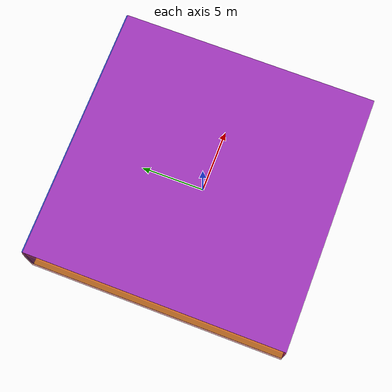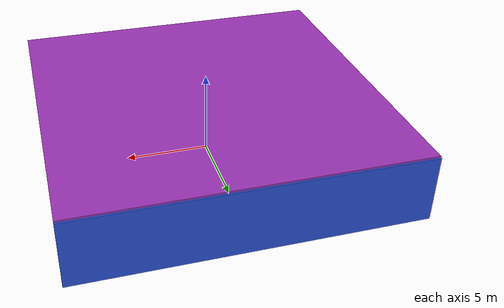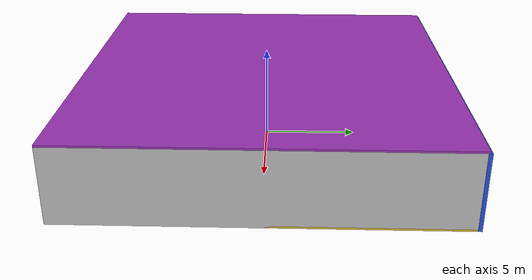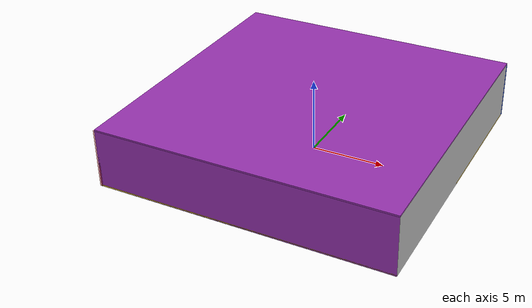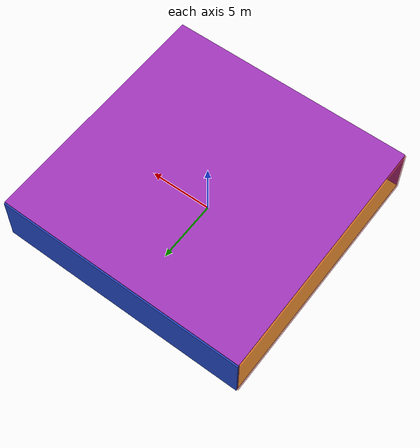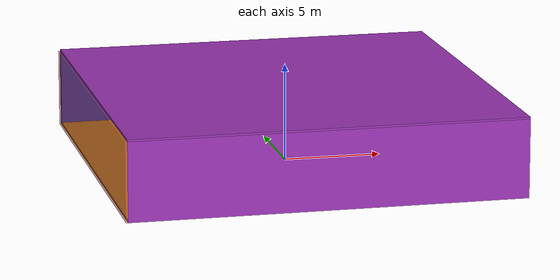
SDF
<sdf version="1.4">
 <world name="default">
  <physics type="ode">
   <max_step_size>0.001</max_step_size>
   <real_time_factor>1</real_time_factor>
   <real_time_update_rate>1000</real_time_update_rate>
   <gravity>0 0 -9.8</gravity>
  </physics>
  <scene><ambient>0.4 0.4 0.4 1</ambient><background>0.7 0.7 0.7 1</background><shadows>1</shadows></scene>
  <model name="Surrounding">
   <static>1</static>
   <link name="Ceiling">
    <collision name="Ceiling_Collision"><geometry><box><size>20 20 0.1</size></box></geometry></collision>
    <visual name="Ceiling_Visual">
     <geometry><box><size>20 20 0.1</size></box></geometry>
     <material>
      <script><uri>file://media/materials/scripts/gazebo.material</uri><name>Gazebo/PurpleGlow</name></script>
     </material>
    </visual>
    <pose>0 0 4.05 0 0 0</pose>
   </link>
   <link name="Wall_South">
    <collision name="Wall_South_Collision">
     <geometry><box><size>20 0 4</size></box></geometry>
     <pose>0 0 2 0 -0 0</pose>
    </collision>
    <visual name="Wall_South_Visual">
     <pose>0 0 2 0 -0 0</pose>
     <geometry><box><size>20 0 4</size></box></geometry>
     <material>
      <script><uri>file://media/materials/scripts/gazebo.material</uri><name>Gazebo/Purple</name></script>
     </material>
    </visual>
    <velocity_decay><linear>0</linear><angular>0</angular></velocity_decay>
    <pose>0 -10 0 0 -0 0</pose>
   </link>
   <link name="Wall_East">
    <collision name="Wall_21_Collision">
     <geometry><box><size>20 0 4</size></box></geometry>
     <pose>0 0 2 0 -0 0</pose>
    </collision>
    <visual name="Wall_21_Visual">
     <pose>0 0 2 0 -0 0</pose>
     <geometry><box><size>20 0 4</size></box></geometry>
     <material>
      <script><uri>file://media/materials/scripts/gazebo.material</uri><name>Gazebo/LightOn</name></script>
     </material>
    </visual>
    <velocity_decay><linear>0</linear><angular>0</angular></velocity_decay>
    <pose>10 0 0 0 -0 1.5708</pose>
   </link>
   <link name="Wall_North">
    <collision name="Wall_22_Collision">
     <geometry><box><size>20 0.2 4</size></box></geometry>
     <pose>0 0 2 0 -0 0</pose>
    </collision>
    <visual name="Wall_22_Visual">
     <pose>0 0 2 0 -0 0</pose>
     <geometry><box><size>20 0.2 4</size></box></geometry>
     <material>
      <script><uri>file://media/materials/scripts/gazebo.material</uri><name>Gazebo/BlueGlow</name></script>
     </material>
    </visual>
    <velocity_decay><linear>0</linear><angular>0</angular></velocity_decay>
    <pose>0 10 0 0 -0 0</pose>
   </link>
   <link name="Wall_West">
    <collision name="Wall_23_Collision">
     <geometry><box><size>20 0.2 4</size></box></geometry>
     <pose>0 0 2 0 -0 0</pose>
    </collision>
    <visual name="Wall_23_Visual">
     <pose>0 0 2 0 -0 0</pose>
     <geometry><box><size>20 0.2 4</size></box></geometry>
     <material>
      <script><uri>file://media/materials/scripts/gazebo.material</uri><name>Gazebo/RedTransparent</name></script>
     </material>
    </visual>
    <velocity_decay><linear>0</linear><angular>0</angular></velocity_decay>
    <pose>-10 0 0 0 0 -1.5708</pose>
   </link>
   <link name="Ground_link">
    <collision name="collision">
     <pose>0 0 .05 0 -0 0</pose>
     <geometry><box><size>20 20 0.1</size></box></geometry>
    </collision>
    <visual name="visual">
     <pose>0 0 .05 0 -0 0</pose>
     <geometry><box><size>20 20 0.1</size></box></geometry>
     <material>
      <script><uri>file://media/materials/scripts/gazebo.material</uri><name>Gazebo/Gold</name></script>
     </material>
    </visual>
   </link>
   <static>1</static>
  </model>
  <spherical_coordinates>
   <surface_model>EARTH_WGS84</surface_model>
   <latitude_deg>0</latitude_deg>
   <longitude_deg>0</longitude_deg>
   <elevation>0</elevation>
   <heading_deg>0</heading_deg>
  </spherical_coordinates>
  <light name="lightball_0" type="diffuse">
   <diffuse>0.8 0.8 0.8 1</diffuse>
   <specular>0.2 0.2 0.2 1</specular>
   <attenuation>
    <range>100</range>
    <constant>0.7</constant>
    <linear>0.01</linear>
    <quadratic>0.001</quadratic>
   </attenuation>
   <direction>-0.5 0.1 -0.9</direction>
   <pose>-3.1986257742 -5.91259475102 1.15199663881 0 0 0</pose>
  </light>
  <light name="lightball_1" type="diffuse">
   <diffuse>0.8 0.8 0.8 1</diffuse>
   <specular>0.2 0.2 0.2 1</specular>
   <attenuation>
    <range>100</range>
    <constant>0.7</constant>
    <linear>0.01</linear>
    <quadratic>0.001</quadratic>
   </attenuation>
   <direction>-0.5 0.1 -0.9</direction>
   <pose>-3.65933525412 4.37682893435 2.88098509873 0 0 0</pose>
  </light>
  <light name="lightball_2" type="diffuse">
   <diffuse>0.8 0.8 0.8 1</diffuse>
   <specular>0.2 0.2 0.2 1</specular>
   <attenuation>
    <range>100</range>
    <constant>0.7</constant>
    <linear>0.01</linear>
    <quadratic>0.001</quadratic>
   </attenuation>
   <direction>-0.5 0.1 -0.9</direction>
   <pose>0.902502931691 -5.28485315188 1.86034813839 0 0 0</pose>
  </light>
  <light name="lightball_3" type="diffuse">
   <diffuse>0.8 0.8 0.8 1</diffuse>
   <specular>0.2 0.2 0.2 1</specular>
   <attenuation>
    <range>100</range>
    <constant>0.7</constant>
    <linear>0.01</linear>
    <quadratic>0.001</quadratic>
   </attenuation>
   <direction>-0.5 0.1 -0.9</direction>
   <pose>1.44536422676 -0.822510468887 0.852054994645 0 0 0</pose>
  </light>
  <light name="lightball_4" type="diffuse">
   <diffuse>0.8 0.8 0.8 1</diffuse>
   <specular>0.2 0.2 0.2 1</specular>
   <attenuation>
    <range>100</range>
    <constant>0.7</constant>
    <linear>0.01</linear>
    <quadratic>0.001</quadratic>
   </attenuation>
   <direction>-0.5 0.1 -0.9</direction>
   <pose>-8.46093299697 -0.586246364548 2.33135531323 0 0 0</pose>
  </light>
  <light name="lightball_5" type="diffuse">
   <diffuse>0.8 0.8 0.8 1</diffuse>
   <specular>0.2 0.2 0.2 1</specular>
   <attenuation>
    <range>100</range>
    <constant>0.7</constant>
    <linear>0.01</linear>
    <quadratic>0.001</quadratic>
   </attenuation>
   <direction>-0.5 0.1 -0.9</direction>
   <pose>4.56059080133 7.56104971746 1.19034044668 0 0 0</pose>
  </light>
  <include><uri>model://cabinet</uri><pose>-3.50924321988 -6.97850388999 0 0 0 1.92928518523</pose></include>
  <include><uri>model://cabinet</uri><pose>-1.94691751034 -6.39286100131 0 0 0 1.9793255397</pose></include>
  <include><uri>model://cabinet</uri><pose>2.41895434646 -6.63737770854 0 0 0 2.8176223595</pose></include>
  <include><uri>model://table</uri><pose>5.3722097991 -5.38800024059 0 0 0 2.72264210227</pose></include>
 </world>
</sdf>

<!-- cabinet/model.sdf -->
<sdf version="1.5">
  <model name="cabinet">
    <static>true</static>
    <link name="cabinet_bottom_plate">
      <inertial>
        <pose>0 0 -1 0 0 0</pose>
        <inertia>
          <ixx>2.050000</ixx>
          <ixy>0</ixy>
          <ixz>0</ixz>
          <iyy>2.050000</iyy>
          <iyz>0</iyz>
          <izz>2.050000</izz>
        </inertia>
        <mass>25.000000</mass>
      </inertial>
      <collision name="cabinet_bottom_plate_geom">
        <pose>0 0 0.010000 0 0 0</pose>
        <geometry>
          <box>
            <size>0.450000 0.450000 0.020000</size>
          </box>
        </geometry>
      </collision>
      <visual name="cabinet_bottom_plate_geom_visual">
        <pose>0 0 0.010000 0 0 0</pose>
        <geometry>
          <box>
            <size>0.450000 0.450000 0.020000</size>
          </box>
        </geometry>
        <material>
          <script>
            <uri>model://media/materials/scripts/gazebo.material</uri>
            <name>Gazebo/Wood</name>
          </script>
        </material>
      </visual>
      <collision name="cabinet_bottom_plate_geom_cabinet_back_plate">
        <pose>0.235000 0 0.510000 0 0 0</pose>
        <geometry>
          <box>
            <size>0.020000 0.450000 1.020000</size>
          </box>
        </geometry>
      </collision>
      <visual name="cabinet_bottom_plate_geom_cabinet_back_plate_visual">
        <pose>0.235000 0 0.510000 0 0 0</pose>
        <geometry>
          <box>
            <size>0.020000 0.450000 1.020000</size>
          </box>
        </geometry>
        <material>
          <script>
            <uri>model://media/materials/scripts/gazebo.material</uri>
            <name>Gazebo/Wood</name>
          </script>
        </material>
      </visual>
      <collision name="cabinet_bottom_plate_geom_cabinet_left_plate">
        <pose>0 0.235000 0.510000 0 0 0</pose>
        <geometry>
          <box>
            <size>0.450000 0.020000 1.020000</size>
          </box>
        </geometry>
      </collision>
      <visual name="cabinet_bottom_plate_geom_cabinet_left_plate_visual">
        <pose>0 0.235000 0.510000 0 0 0</pose>
        <geometry>
          <box>
            <size>0.450000 0.020000 1.020000</size>
          </box>
        </geometry>
        <material>
          <script>
            <uri>model://media/materials/scripts/gazebo.material</uri>
            <name>Gazebo/Wood</name>
          </script>
        </material>
      </visual>
      <collision name="cabinet_bottom_plate_geom_cabinet_middle_plate">
        <pose>0 0 0.510000 0 0 0</pose>
        <geometry>
          <box>
            <size>0.450000 0.450000 0.020000</size>
          </box>
        </geometry>
      </collision>
      <visual name="cabinet_bottom_plate_geom_cabinet_middle_plate_visual">
        <pose>0 0 0.510000 0 0 0</pose>
        <geometry>
          <box>
            <size>0.450000 0.450000 0.020000</size>
          </box>
        </geometry>
        <material>
          <script>
            <uri>model://media/materials/scripts/gazebo.material</uri>
            <name>Gazebo/Wood</name>
          </script>
        </material>
      </visual>
      <collision name="cabinet_bottom_plate_geom_cabinet_right_plate">
        <pose>0 -0.235000 0.510000 0 0 0</pose>
        <geometry>
          <box>
            <size>0.450000 0.020000 1.020000</size>
          </box>
        </geometry>
      </collision>
      <visual name="cabinet_bottom_plate_geom_cabinet_right_plate_visual">
        <pose>0 -0.235000 0.510000 0 0 0</pose>
        <geometry>
          <box>
            <size>0.450000 0.020000 1.020000</size>
          </box>
        </geometry>
        <material>
          <script>
            <uri>model://media/materials/scripts/gazebo.material</uri>
            <name>Gazebo/Wood</name>
          </script>
        </material>
      </visual>
      <collision name="cabinet_bottom_plate_geom_cabinet_top_plate">
        <pose>0 0 1.010000 0 0 0</pose>
        <geometry>
          <box>
            <size>0.450000 0.450000 0.020000</size>
          </box>
        </geometry>
      </collision>
      <visual name="cabinet_bottom_plate_geom_cabinet_top_plate_visual">
        <pose>0 0 1.010000 0 0 0</pose>
        <geometry>
          <box>
            <size>0.450000 0.450000 0.020000</size>
          </box>
        </geometry>
        <material>
          <script>
            <uri>model://media/materials/scripts/gazebo.material</uri>
            <name>Gazebo/Wood</name>
          </script>
        </material>
      </visual>
    </link>
  </model>
</sdf>

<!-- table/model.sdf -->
<sdf version="1.5">
  <model name="table">
    <static>true</static>
    <link name="link">
      <collision name="surface">
        <pose>0 0 1.0 0 0 0</pose>
        <geometry>
          <box>
            <size>1.5 0.8 0.03</size>
          </box>
        </geometry>
        <surface>
          <friction>
            <ode>
              <mu>0.6</mu>
              <mu2>0.6</mu2>
            </ode>
          </friction>
        </surface>
      </collision>
      <visual name="visual1">
        <pose>0 0 1.0 0 0 0</pose>
        <geometry>
          <box>
            <size>1.5 0.8 0.03</size>
          </box>
        </geometry>
        <material>
          <script>
            <uri>model://media/materials/scripts/gazebo.material</uri>
            <name>Gazebo/Wood</name>
          </script>
        </material>
      </visual>
      <collision name="front_left_leg">
        <pose>0.68 0.38 0.5 0 0 0</pose>
        <geometry>
          <cylinder>
            <radius>0.02</radius>
            <length>1.0</length>
          </cylinder>
        </geometry>
      </collision>
      <visual name="front_left_leg">
        <pose>0.68 0.38 0.5 0 0 0</pose>
        <geometry>
          <cylinder>
            <radius>0.02</radius>
            <length>1.0</length>
          </cylinder>
        </geometry>
        <material>
          <script>
            <uri>model://media/materials/scripts/gazebo.material</uri>
            <name>Gazebo/Grey</name>
          </script>
        </material>
      </visual>
      <collision name="front_right_leg">
        <pose>0.68 -0.38 0.5 0 0 0</pose>
        <geometry>
          <cylinder>
            <radius>0.02</radius>
            <length>1.0</length>
          </cylinder>
        </geometry>
      </collision>
      <visual name="front_right_leg">
        <pose>0.68 -0.38 0.5 0 0 0</pose>
        <geometry>
          <cylinder>
            <radius>0.02</radius>
            <length>1.0</length>
          </cylinder>
        </geometry>
        <material>
          <script>
            <uri>model://media/materials/scripts/gazebo.material</uri>
            <name>Gazebo/Grey</name>
          </script>
        </material>
      </visual>
      <collision name="back_right_leg">
        <pose>-0.68 -0.38 0.5 0 0 0</pose>
        <geometry>
          <cylinder>
            <radius>0.02</radius>
            <length>1.0</length>
          </cylinder>
        </geometry>
      </collision>
      <visual name="back_right_leg">
        <pose>-0.68 -0.38 0.5 0 0 0</pose>
        <geometry>
          <cylinder>
            <radius>0.02</radius>
            <length>1.0</length>
          </cylinder>
        </geometry>
        <material>
          <script>
            <uri>model://media/materials/scripts/gazebo.material</uri>
            <name>Gazebo/Grey</name>
          </script>
        </material>
      </visual>
      <collision name="back_left_leg">
        <pose>-0.68 0.38 0.5 0 0 0</pose>
        <geometry>
          <cylinder>
            <radius>0.02</radius>
            <length>1.0</length>
          </cylinder>
        </geometry>
      </collision>
      <visual name="back_left_leg">
        <pose>-0.68 0.38 0.5 0 0 0</pose>
        <geometry>
          <cylinder>
            <radius>0.02</radius>
            <length>1.0</length>
          </cylinder>
        </geometry>
        <material>
          <script>
            <uri>model://media/materials/scripts/gazebo.material</uri>
            <name>Gazebo/Grey</name>
          </script>
        </material>
      </visual>
    </link>
  </model>
</sdf>
